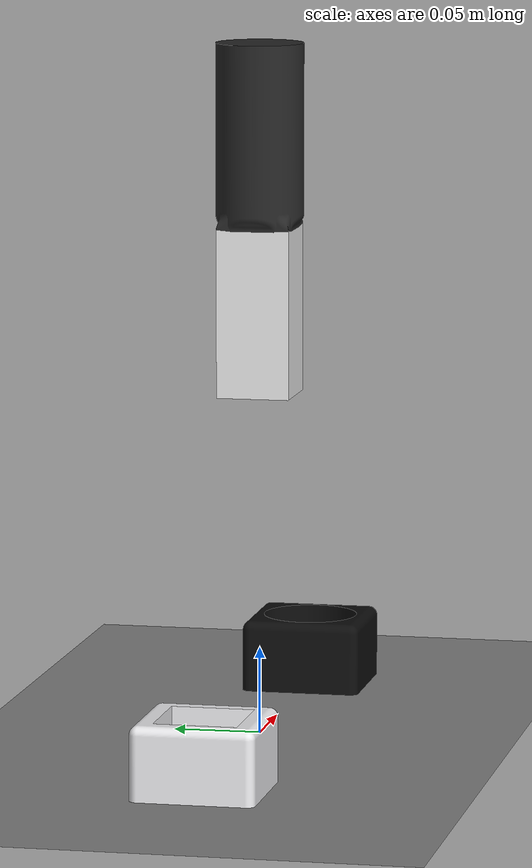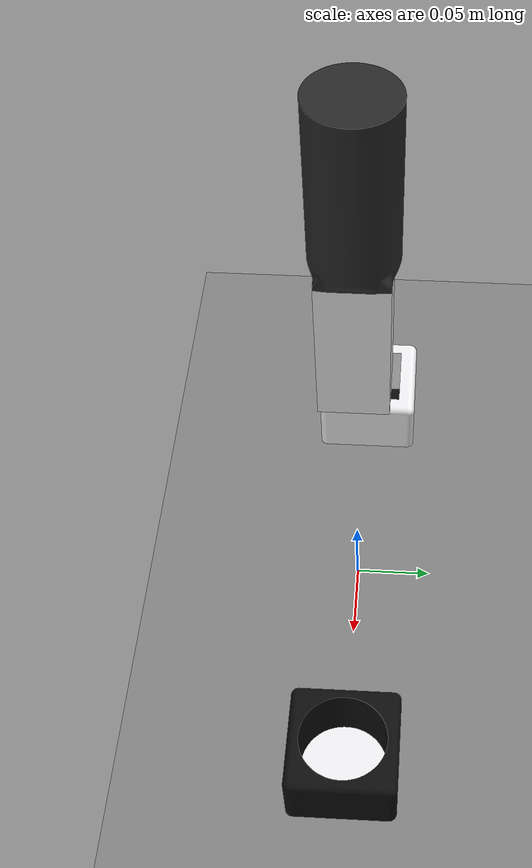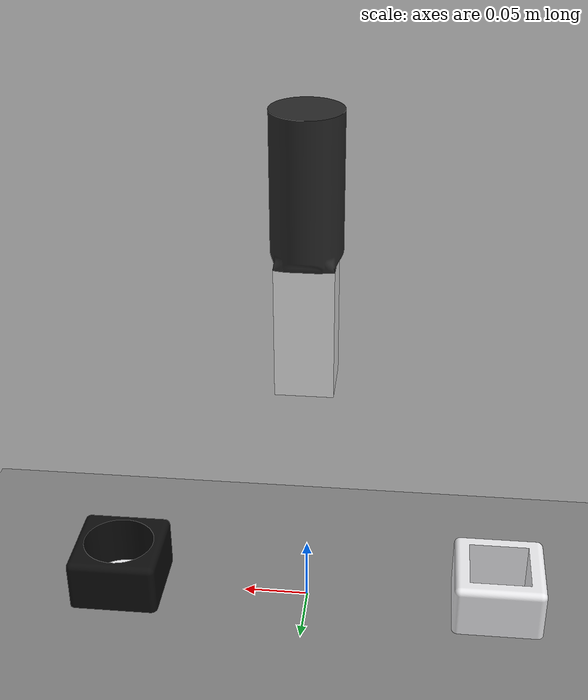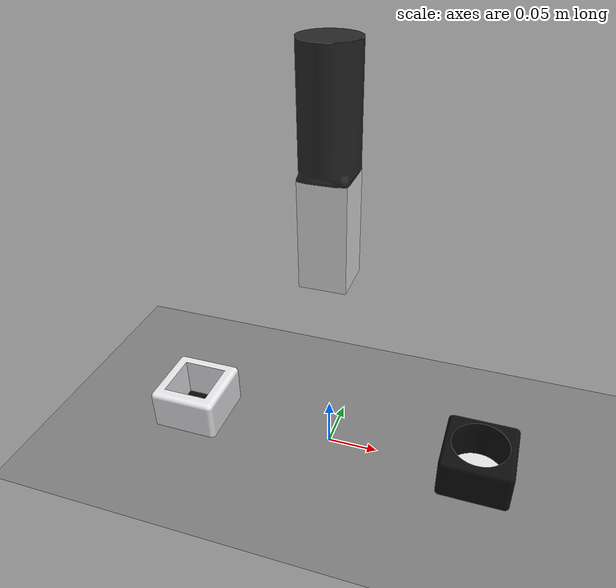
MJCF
<mujoco model="peg_hole_test"><include file="peg_hole_assets.xml"/>
  <option timestep="0.001" integrator="implicitfast"/>
  <worldbody><geom name="table" type="plane" size="1 1 0.1" friction="0.8 0.005 0.0005" solref="0.004 1" solimp="0.95 0.99 0.001" condim="4"/>
    <body name="hole_square" pos="-0.15 0 0.041"><inertial pos="0 0 -0.022" mass="0.05" diaginertia="2.848e-05 2.848e-05 4.083e-05"/><geom type="mesh" mesh="hole_square_vis" contype="0" conaffinity="0" rgba="0.92 0.92 0.93 1"/><geom type="mesh" mesh="hole_square_floor" mass="0" contype="0" conaffinity="0" rgba="0.04 0.04 0.04 1"/>
      <geom type="box" pos="0 0 -0.04250" size="0.03500 0.03500 0.00150" friction="0.8 0.005 0.0005" solref="0.004 1" solimp="0.95 0.99 0.001" condim="4" rgba="0.2 0.2 0.22 0"/>
      <geom type="box" pos="0.02917 0 -0.02050" size="0.00583 0.03500 0.02050" friction="0.8 0.005 0.0005" solref="0.004 1" solimp="0.95 0.99 0.001" condim="4" rgba="0.2 0.2 0.22 0"/>
      <geom type="box" pos="-0.02917 0 -0.02050" size="0.00583 0.03500 0.02050" friction="0.8 0.005 0.0005" solref="0.004 1" solimp="0.95 0.99 0.001" condim="4" rgba="0.2 0.2 0.22 0"/>
      <geom type="box" pos="0 0.02917 -0.02050" size="0.02335 0.00583 0.02050" friction="0.8 0.005 0.0005" solref="0.004 1" solimp="0.95 0.99 0.001" condim="4" rgba="0.2 0.2 0.22 0"/>
      <geom type="box" pos="0 -0.02917 -0.02050" size="0.02335 0.00583 0.02050" friction="0.8 0.005 0.0005" solref="0.004 1" solimp="0.95 0.99 0.001" condim="4" rgba="0.2 0.2 0.22 0"/>
    </body>
    <body name="hole_circle" pos="0.15 0 0.041"><inertial pos="0 0 -0.022" mass="0.05" diaginertia="2.848e-05 2.848e-05 4.083e-05"/><geom type="mesh" mesh="hole_circle_vis" contype="0" conaffinity="0" rgba="0.05 0.05 0.05 1"/><geom type="mesh" mesh="hole_circle_floor" mass="0" contype="0" conaffinity="0" rgba="0.92 0.92 0.93 1"/>
      <geom type="box" pos="0 0 -0.04250" size="0.03500 0.03500 0.00150" friction="0.8 0.005 0.0005" solref="0.004 1" solimp="0.95 0.99 0.001" condim="4" rgba="0.2 0.2 0.22 0"/>
      <geom type="mesh" mesh="cq0" friction="0.8 0.005 0.0005" solref="0.004 1" solimp="0.95 0.99 0.001" condim="4" rgba="0.2 0.2 0.22 0"/>
      <geom type="mesh" mesh="cq1" friction="0.8 0.005 0.0005" solref="0.004 1" solimp="0.95 0.99 0.001" condim="4" rgba="0.2 0.2 0.22 0"/>
      <geom type="mesh" mesh="cq2" friction="0.8 0.005 0.0005" solref="0.004 1" solimp="0.95 0.99 0.001" condim="4" rgba="0.2 0.2 0.22 0"/>
      <geom type="mesh" mesh="cq3" friction="0.8 0.005 0.0005" solref="0.004 1" solimp="0.95 0.99 0.001" condim="4" rgba="0.2 0.2 0.22 0"/>
      <geom type="mesh" mesh="cq4" friction="0.8 0.005 0.0005" solref="0.004 1" solimp="0.95 0.99 0.001" condim="4" rgba="0.2 0.2 0.22 0"/>
      <geom type="mesh" mesh="cq5" friction="0.8 0.005 0.0005" solref="0.004 1" solimp="0.95 0.99 0.001" condim="4" rgba="0.2 0.2 0.22 0"/>
      <geom type="mesh" mesh="cq6" friction="0.8 0.005 0.0005" solref="0.004 1" solimp="0.95 0.99 0.001" condim="4" rgba="0.2 0.2 0.22 0"/>
      <geom type="mesh" mesh="cq7" friction="0.8 0.005 0.0005" solref="0.004 1" solimp="0.95 0.99 0.001" condim="4" rgba="0.2 0.2 0.22 0"/>
      <geom type="mesh" mesh="cq8" friction="0.8 0.005 0.0005" solref="0.004 1" solimp="0.95 0.99 0.001" condim="4" rgba="0.2 0.2 0.22 0"/>
      <geom type="mesh" mesh="cq9" friction="0.8 0.005 0.0005" solref="0.004 1" solimp="0.95 0.99 0.001" condim="4" rgba="0.2 0.2 0.22 0"/>
      <geom type="mesh" mesh="cq10" friction="0.8 0.005 0.0005" solref="0.004 1" solimp="0.95 0.99 0.001" condim="4" rgba="0.2 0.2 0.22 0"/>
      <geom type="mesh" mesh="cq11" friction="0.8 0.005 0.0005" solref="0.004 1" solimp="0.95 0.99 0.001" condim="4" rgba="0.2 0.2 0.22 0"/>
      <geom type="mesh" mesh="cq12" friction="0.8 0.005 0.0005" solref="0.004 1" solimp="0.95 0.99 0.001" condim="4" rgba="0.2 0.2 0.22 0"/>
      <geom type="mesh" mesh="cq13" friction="0.8 0.005 0.0005" solref="0.004 1" solimp="0.95 0.99 0.001" condim="4" rgba="0.2 0.2 0.22 0"/>
      <geom type="mesh" mesh="cq14" friction="0.8 0.005 0.0005" solref="0.004 1" solimp="0.95 0.99 0.001" condim="4" rgba="0.2 0.2 0.22 0"/>
      <geom type="mesh" mesh="cq15" friction="0.8 0.005 0.0005" solref="0.004 1" solimp="0.95 0.99 0.001" condim="4" rgba="0.2 0.2 0.22 0"/>
      <geom type="mesh" mesh="cq16" friction="0.8 0.005 0.0005" solref="0.004 1" solimp="0.95 0.99 0.001" condim="4" rgba="0.2 0.2 0.22 0"/>
      <geom type="mesh" mesh="cq17" friction="0.8 0.005 0.0005" solref="0.004 1" solimp="0.95 0.99 0.001" condim="4" rgba="0.2 0.2 0.22 0"/>
      <geom type="mesh" mesh="cq18" friction="0.8 0.005 0.0005" solref="0.004 1" solimp="0.95 0.99 0.001" condim="4" rgba="0.2 0.2 0.22 0"/>
      <geom type="mesh" mesh="cq19" friction="0.8 0.005 0.0005" solref="0.004 1" solimp="0.95 0.99 0.001" condim="4" rgba="0.2 0.2 0.22 0"/>
      <geom type="mesh" mesh="cq20" friction="0.8 0.005 0.0005" solref="0.004 1" solimp="0.95 0.99 0.001" condim="4" rgba="0.2 0.2 0.22 0"/>
      <geom type="mesh" mesh="cq21" friction="0.8 0.005 0.0005" solref="0.004 1" solimp="0.95 0.99 0.001" condim="4" rgba="0.2 0.2 0.22 0"/>
      <geom type="mesh" mesh="cq22" friction="0.8 0.005 0.0005" solref="0.004 1" solimp="0.95 0.99 0.001" condim="4" rgba="0.2 0.2 0.22 0"/>
      <geom type="mesh" mesh="cq23" friction="0.8 0.005 0.0005" solref="0.004 1" solimp="0.95 0.99 0.001" condim="4" rgba="0.2 0.2 0.22 0"/>
      <geom type="mesh" mesh="cq24" friction="0.8 0.005 0.0005" solref="0.004 1" solimp="0.95 0.99 0.001" condim="4" rgba="0.2 0.2 0.22 0"/>
      <geom type="mesh" mesh="cq25" friction="0.8 0.005 0.0005" solref="0.004 1" solimp="0.95 0.99 0.001" condim="4" rgba="0.2 0.2 0.22 0"/>
      <geom type="mesh" mesh="cq26" friction="0.8 0.005 0.0005" solref="0.004 1" solimp="0.95 0.99 0.001" condim="4" rgba="0.2 0.2 0.22 0"/>
      <geom type="mesh" mesh="cq27" friction="0.8 0.005 0.0005" solref="0.004 1" solimp="0.95 0.99 0.001" condim="4" rgba="0.2 0.2 0.22 0"/>
      <geom type="mesh" mesh="cq28" friction="0.8 0.005 0.0005" solref="0.004 1" solimp="0.95 0.99 0.001" condim="4" rgba="0.2 0.2 0.22 0"/>
      <geom type="mesh" mesh="cq29" friction="0.8 0.005 0.0005" solref="0.004 1" solimp="0.95 0.99 0.001" condim="4" rgba="0.2 0.2 0.22 0"/>
      <geom type="mesh" mesh="cq30" friction="0.8 0.005 0.0005" solref="0.004 1" solimp="0.95 0.99 0.001" condim="4" rgba="0.2 0.2 0.22 0"/>
      <geom type="mesh" mesh="cq31" friction="0.8 0.005 0.0005" solref="0.004 1" solimp="0.95 0.99 0.001" condim="4" rgba="0.2 0.2 0.22 0"/>
      <geom type="mesh" mesh="cq32" friction="0.8 0.005 0.0005" solref="0.004 1" solimp="0.95 0.99 0.001" condim="4" rgba="0.2 0.2 0.22 0"/>
      <geom type="mesh" mesh="cq33" friction="0.8 0.005 0.0005" solref="0.004 1" solimp="0.95 0.99 0.001" condim="4" rgba="0.2 0.2 0.22 0"/>
      <geom type="mesh" mesh="cq34" friction="0.8 0.005 0.0005" solref="0.004 1" solimp="0.95 0.99 0.001" condim="4" rgba="0.2 0.2 0.22 0"/>
      <geom type="mesh" mesh="cq35" friction="0.8 0.005 0.0005" solref="0.004 1" solimp="0.95 0.99 0.001" condim="4" rgba="0.2 0.2 0.22 0"/>
      <geom type="mesh" mesh="cq36" friction="0.8 0.005 0.0005" solref="0.004 1" solimp="0.95 0.99 0.001" condim="4" rgba="0.2 0.2 0.22 0"/>
      <geom type="mesh" mesh="cq37" friction="0.8 0.005 0.0005" solref="0.004 1" solimp="0.95 0.99 0.001" condim="4" rgba="0.2 0.2 0.22 0"/>
      <geom type="mesh" mesh="cq38" friction="0.8 0.005 0.0005" solref="0.004 1" solimp="0.95 0.99 0.001" condim="4" rgba="0.2 0.2 0.22 0"/>
      <geom type="mesh" mesh="cq39" friction="0.8 0.005 0.0005" solref="0.004 1" solimp="0.95 0.99 0.001" condim="4" rgba="0.2 0.2 0.22 0"/>
      <geom type="mesh" mesh="cq40" friction="0.8 0.005 0.0005" solref="0.004 1" solimp="0.95 0.99 0.001" condim="4" rgba="0.2 0.2 0.22 0"/>
      <geom type="mesh" mesh="cq41" friction="0.8 0.005 0.0005" solref="0.004 1" solimp="0.95 0.99 0.001" condim="4" rgba="0.2 0.2 0.22 0"/>
      <geom type="mesh" mesh="cq42" friction="0.8 0.005 0.0005" solref="0.004 1" solimp="0.95 0.99 0.001" condim="4" rgba="0.2 0.2 0.22 0"/>
      <geom type="mesh" mesh="cq43" friction="0.8 0.005 0.0005" solref="0.004 1" solimp="0.95 0.99 0.001" condim="4" rgba="0.2 0.2 0.22 0"/>
      <geom type="mesh" mesh="cq44" friction="0.8 0.005 0.0005" solref="0.004 1" solimp="0.95 0.99 0.001" condim="4" rgba="0.2 0.2 0.22 0"/>
      <geom type="mesh" mesh="cq45" friction="0.8 0.005 0.0005" solref="0.004 1" solimp="0.95 0.99 0.001" condim="4" rgba="0.2 0.2 0.22 0"/>
      <geom type="mesh" mesh="cq46" friction="0.8 0.005 0.0005" solref="0.004 1" solimp="0.95 0.99 0.001" condim="4" rgba="0.2 0.2 0.22 0"/>
      <geom type="mesh" mesh="cq47" friction="0.8 0.005 0.0005" solref="0.004 1" solimp="0.95 0.99 0.001" condim="4" rgba="0.2 0.2 0.22 0"/>
    </body>
    <body name="peg" pos="0 0 0.3">
      <freejoint name="peg_free"/>
      <inertial pos="0 0 0" mass="0.1" diaginertia="2.195e-04 2.195e-04 5.281e-05"/>
      <geom type="mesh" mesh="peg_sq" contype="0" conaffinity="0" rgba="0.9 0.9 0.9 1"/>
      <geom type="mesh" mesh="peg_circ" contype="0" conaffinity="0" rgba="0.15 0.15 0.15 1"/>
      <!-- collision = primitives (mesh-mesh contacts were unstable at the rim); 8 mm square->round loft has no collision geom -->
      <geom name="peg_sq_col" type="box" pos="0 0 -0.05575" size="0.02075 0.02075 0.0475" friction="0.8 0.005 0.0005" solref="0.004 1" solimp="0.95 0.99 0.001" condim="4" rgba="0 0 0 0"/>
      <geom name="peg_circ_col" type="cylinder" pos="0 0 0.04834" size="0.025 0.04841" friction="0.8 0.005 0.0005" solref="0.004 1" solimp="0.95 0.99 0.001" condim="4" rgba="0 0 0 0"/>
    </body>
  </worldbody></mujoco>

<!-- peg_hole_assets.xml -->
<mujoco model="peg_hole_assets">
  <compiler angle="radian" meshdir="meshes"/>
  <asset>
    <mesh name="peg_sq" file="peg_sq.stl"/>
    <mesh name="peg_circ" file="peg_circ.stl"/>
    <mesh name="hole_circle_vis" file="hole_circle_vis.stl"/>
    <mesh name="hole_square_vis" file="hole_square_vis.stl"/>
    <mesh name="hole_circle_floor" file="hole_circle_floor.stl"/>
    <mesh name="hole_square_floor" file="hole_square_floor.stl"/>
    <mesh name="cq0" vertex="0.027740 0.000000 0.000000 0.027503 0.003621 0.000000 0.035000 0.004608 0.000000 0.035000 0.000000 0.000000 0.027740 0.000000 -0.041000 0.027503 0.003621 -0.041000 0.035000 0.004608 -0.041000 0.035000 0.000000 -0.041000"/>
    <mesh name="cq1" vertex="0.027503 0.003621 0.000000 0.026795 0.007180 0.000000 0.035000 0.009378 0.000000 0.035000 0.004608 0.000000 0.027503 0.003621 -0.041000 0.026795 0.007180 -0.041000 0.035000 0.009378 -0.041000 0.035000 0.004608 -0.041000"/>
    <mesh name="cq2" vertex="0.026795 0.007180 0.000000 0.025628 0.010616 0.000000 0.035000 0.014497 0.000000 0.035000 0.009378 0.000000 0.026795 0.007180 -0.041000 0.025628 0.010616 -0.041000 0.035000 0.014497 -0.041000 0.035000 0.009378 -0.041000"/>
    <mesh name="cq3" vertex="0.025628 0.010616 0.000000 0.024024 0.013870 0.000000 0.035000 0.020207 0.000000 0.035000 0.014497 0.000000 0.025628 0.010616 -0.041000 0.024024 0.013870 -0.041000 0.035000 0.020207 -0.041000 0.035000 0.014497 -0.041000"/>
    <mesh name="cq4" vertex="0.024024 0.013870 0.000000 0.022008 0.016887 0.000000 0.035000 0.026856 0.000000 0.035000 0.020207 0.000000 0.024024 0.013870 -0.041000 0.022008 0.016887 -0.041000 0.035000 0.026856 -0.041000 0.035000 0.020207 -0.041000"/>
    <mesh name="cq5" vertex="0.022008 0.016887 0.000000 0.019615 0.019615 0.000000 0.035000 0.035000 0.000000 0.035000 0.026856 0.000000 0.022008 0.016887 -0.041000 0.019615 0.019615 -0.041000 0.035000 0.035000 -0.041000 0.035000 0.026856 -0.041000"/>
    <mesh name="cq6" vertex="0.019615 0.019615 0.000000 0.016887 0.022008 0.000000 0.026856 0.035000 0.000000 0.035000 0.035000 0.000000 0.019615 0.019615 -0.041000 0.016887 0.022008 -0.041000 0.026856 0.035000 -0.041000 0.035000 0.035000 -0.041000"/>
    <mesh name="cq7" vertex="0.016887 0.022008 0.000000 0.013870 0.024024 0.000000 0.020207 0.035000 0.000000 0.026856 0.035000 0.000000 0.016887 0.022008 -0.041000 0.013870 0.024024 -0.041000 0.020207 0.035000 -0.041000 0.026856 0.035000 -0.041000"/>
    <mesh name="cq8" vertex="0.013870 0.024024 0.000000 0.010616 0.025628 0.000000 0.014497 0.035000 0.000000 0.020207 0.035000 0.000000 0.013870 0.024024 -0.041000 0.010616 0.025628 -0.041000 0.014497 0.035000 -0.041000 0.020207 0.035000 -0.041000"/>
    <mesh name="cq9" vertex="0.010616 0.025628 0.000000 0.007180 0.026795 0.000000 0.009378 0.035000 0.000000 0.014497 0.035000 0.000000 0.010616 0.025628 -0.041000 0.007180 0.026795 -0.041000 0.009378 0.035000 -0.041000 0.014497 0.035000 -0.041000"/>
    <mesh name="cq10" vertex="0.007180 0.026795 0.000000 0.003621 0.027503 0.000000 0.004608 0.035000 0.000000 0.009378 0.035000 0.000000 0.007180 0.026795 -0.041000 0.003621 0.027503 -0.041000 0.004608 0.035000 -0.041000 0.009378 0.035000 -0.041000"/>
    <mesh name="cq11" vertex="0.003621 0.027503 0.000000 0.000000 0.027740 0.000000 0.000000 0.035000 0.000000 0.004608 0.035000 0.000000 0.003621 0.027503 -0.041000 0.000000 0.027740 -0.041000 0.000000 0.035000 -0.041000 0.004608 0.035000 -0.041000"/>
    <mesh name="cq12" vertex="0.000000 0.027740 0.000000 -0.003621 0.027503 0.000000 -0.004608 0.035000 0.000000 0.000000 0.035000 0.000000 0.000000 0.027740 -0.041000 -0.003621 0.027503 -0.041000 -0.004608 0.035000 -0.041000 0.000000 0.035000 -0.041000"/>
    <mesh name="cq13" vertex="-0.003621 0.027503 0.000000 -0.007180 0.026795 0.000000 -0.009378 0.035000 0.000000 -0.004608 0.035000 0.000000 -0.003621 0.027503 -0.041000 -0.007180 0.026795 -0.041000 -0.009378 0.035000 -0.041000 -0.004608 0.035000 -0.041000"/>
    <mesh name="cq14" vertex="-0.007180 0.026795 0.000000 -0.010616 0.025628 0.000000 -0.014497 0.035000 0.000000 -0.009378 0.035000 0.000000 -0.007180 0.026795 -0.041000 -0.010616 0.025628 -0.041000 -0.014497 0.035000 -0.041000 -0.009378 0.035000 -0.041000"/>
    <mesh name="cq15" vertex="-0.010616 0.025628 0.000000 -0.013870 0.024024 0.000000 -0.020207 0.035000 0.000000 -0.014497 0.035000 0.000000 -0.010616 0.025628 -0.041000 -0.013870 0.024024 -0.041000 -0.020207 0.035000 -0.041000 -0.014497 0.035000 -0.041000"/>
    <mesh name="cq16" vertex="-0.013870 0.024024 0.000000 -0.016887 0.022008 0.000000 -0.026856 0.035000 0.000000 -0.020207 0.035000 0.000000 -0.013870 0.024024 -0.041000 -0.016887 0.022008 -0.041000 -0.026856 0.035000 -0.041000 -0.020207 0.035000 -0.041000"/>
    <mesh name="cq17" vertex="-0.016887 0.022008 0.000000 -0.019615 0.019615 0.000000 -0.035000 0.035000 0.000000 -0.026856 0.035000 0.000000 -0.016887 0.022008 -0.041000 -0.019615 0.019615 -0.041000 -0.035000 0.035000 -0.041000 -0.026856 0.035000 -0.041000"/>
    <mesh name="cq18" vertex="-0.019615 0.019615 0.000000 -0.022008 0.016887 0.000000 -0.035000 0.026856 0.000000 -0.035000 0.035000 0.000000 -0.019615 0.019615 -0.041000 -0.022008 0.016887 -0.041000 -0.035000 0.026856 -0.041000 -0.035000 0.035000 -0.041000"/>
    <mesh name="cq19" vertex="-0.022008 0.016887 0.000000 -0.024024 0.013870 0.000000 -0.035000 0.020207 0.000000 -0.035000 0.026856 0.000000 -0.022008 0.016887 -0.041000 -0.024024 0.013870 -0.041000 -0.035000 0.020207 -0.041000 -0.035000 0.026856 -0.041000"/>
    <mesh name="cq20" vertex="-0.024024 0.013870 0.000000 -0.025628 0.010616 0.000000 -0.035000 0.014497 0.000000 -0.035000 0.020207 0.000000 -0.024024 0.013870 -0.041000 -0.025628 0.010616 -0.041000 -0.035000 0.014497 -0.041000 -0.035000 0.020207 -0.041000"/>
    <mesh name="cq21" vertex="-0.025628 0.010616 0.000000 -0.026795 0.007180 0.000000 -0.035000 0.009378 0.000000 -0.035000 0.014497 0.000000 -0.025628 0.010616 -0.041000 -0.026795 0.007180 -0.041000 -0.035000 0.009378 -0.041000 -0.035000 0.014497 -0.041000"/>
    <mesh name="cq22" vertex="-0.026795 0.007180 0.000000 -0.027503 0.003621 0.000000 -0.035000 0.004608 0.000000 -0.035000 0.009378 0.000000 -0.026795 0.007180 -0.041000 -0.027503 0.003621 -0.041000 -0.035000 0.004608 -0.041000 -0.035000 0.009378 -0.041000"/>
    <mesh name="cq23" vertex="-0.027503 0.003621 0.000000 -0.027740 0.000000 0.000000 -0.035000 0.000000 0.000000 -0.035000 0.004608 0.000000 -0.027503 0.003621 -0.041000 -0.027740 0.000000 -0.041000 -0.035000 0.000000 -0.041000 -0.035000 0.004608 -0.041000"/>
    <mesh name="cq24" vertex="-0.027740 0.000000 0.000000 -0.027503 -0.003621 0.000000 -0.035000 -0.004608 0.000000 -0.035000 0.000000 0.000000 -0.027740 0.000000 -0.041000 -0.027503 -0.003621 -0.041000 -0.035000 -0.004608 -0.041000 -0.035000 0.000000 -0.041000"/>
    <mesh name="cq25" vertex="-0.027503 -0.003621 0.000000 -0.026795 -0.007180 0.000000 -0.035000 -0.009378 0.000000 -0.035000 -0.004608 0.000000 -0.027503 -0.003621 -0.041000 -0.026795 -0.007180 -0.041000 -0.035000 -0.009378 -0.041000 -0.035000 -0.004608 -0.041000"/>
    <mesh name="cq26" vertex="-0.026795 -0.007180 0.000000 -0.025628 -0.010616 0.000000 -0.035000 -0.014497 0.000000 -0.035000 -0.009378 0.000000 -0.026795 -0.007180 -0.041000 -0.025628 -0.010616 -0.041000 -0.035000 -0.014497 -0.041000 -0.035000 -0.009378 -0.041000"/>
    <mesh name="cq27" vertex="-0.025628 -0.010616 0.000000 -0.024024 -0.013870 0.000000 -0.035000 -0.020207 0.000000 -0.035000 -0.014497 0.000000 -0.025628 -0.010616 -0.041000 -0.024024 -0.013870 -0.041000 -0.035000 -0.020207 -0.041000 -0.035000 -0.014497 -0.041000"/>
    <mesh name="cq28" vertex="-0.024024 -0.013870 0.000000 -0.022008 -0.016887 0.000000 -0.035000 -0.026856 0.000000 -0.035000 -0.020207 0.000000 -0.024024 -0.013870 -0.041000 -0.022008 -0.016887 -0.041000 -0.035000 -0.026856 -0.041000 -0.035000 -0.020207 -0.041000"/>
    <mesh name="cq29" vertex="-0.022008 -0.016887 0.000000 -0.019615 -0.019615 0.000000 -0.035000 -0.035000 0.000000 -0.035000 -0.026856 0.000000 -0.022008 -0.016887 -0.041000 -0.019615 -0.019615 -0.041000 -0.035000 -0.035000 -0.041000 -0.035000 -0.026856 -0.041000"/>
    <mesh name="cq30" vertex="-0.019615 -0.019615 0.000000 -0.016887 -0.022008 0.000000 -0.026856 -0.035000 0.000000 -0.035000 -0.035000 0.000000 -0.019615 -0.019615 -0.041000 -0.016887 -0.022008 -0.041000 -0.026856 -0.035000 -0.041000 -0.035000 -0.035000 -0.041000"/>
    <mesh name="cq31" vertex="-0.016887 -0.022008 0.000000 -0.013870 -0.024024 0.000000 -0.020207 -0.035000 0.000000 -0.026856 -0.035000 0.000000 -0.016887 -0.022008 -0.041000 -0.013870 -0.024024 -0.041000 -0.020207 -0.035000 -0.041000 -0.026856 -0.035000 -0.041000"/>
    <mesh name="cq32" vertex="-0.013870 -0.024024 0.000000 -0.010616 -0.025628 0.000000 -0.014497 -0.035000 0.000000 -0.020207 -0.035000 0.000000 -0.013870 -0.024024 -0.041000 -0.010616 -0.025628 -0.041000 -0.014497 -0.035000 -0.041000 -0.020207 -0.035000 -0.041000"/>
    <mesh name="cq33" vertex="-0.010616 -0.025628 0.000000 -0.007180 -0.026795 0.000000 -0.009378 -0.035000 0.000000 -0.014497 -0.035000 0.000000 -0.010616 -0.025628 -0.041000 -0.007180 -0.026795 -0.041000 -0.009378 -0.035000 -0.041000 -0.014497 -0.035000 -0.041000"/>
    <mesh name="cq34" vertex="-0.007180 -0.026795 0.000000 -0.003621 -0.027503 0.000000 -0.004608 -0.035000 0.000000 -0.009378 -0.035000 0.000000 -0.007180 -0.026795 -0.041000 -0.003621 -0.027503 -0.041000 -0.004608 -0.035000 -0.041000 -0.009378 -0.035000 -0.041000"/>
    <mesh name="cq35" vertex="-0.003621 -0.027503 0.000000 -0.000000 -0.027740 0.000000 -0.000000 -0.035000 0.000000 -0.004608 -0.035000 0.000000 -0.003621 -0.027503 -0.041000 -0.000000 -0.027740 -0.041000 -0.000000 -0.035000 -0.041000 -0.004608 -0.035000 -0.041000"/>
    <mesh name="cq36" vertex="-0.000000 -0.027740 0.000000 0.003621 -0.027503 0.000000 0.004608 -0.035000 0.000000 -0.000000 -0.035000 0.000000 -0.000000 -0.027740 -0.041000 0.003621 -0.027503 -0.041000 0.004608 -0.035000 -0.041000 -0.000000 -0.035000 -0.041000"/>
    <mesh name="cq37" vertex="0.003621 -0.027503 0.000000 0.007180 -0.026795 0.000000 0.009378 -0.035000 0.000000 0.004608 -0.035000 0.000000 0.003621 -0.027503 -0.041000 0.007180 -0.026795 -0.041000 0.009378 -0.035000 -0.041000 0.004608 -0.035000 -0.041000"/>
    <mesh name="cq38" vertex="0.007180 -0.026795 0.000000 0.010616 -0.025628 0.000000 0.014497 -0.035000 0.000000 0.009378 -0.035000 0.000000 0.007180 -0.026795 -0.041000 0.010616 -0.025628 -0.041000 0.014497 -0.035000 -0.041000 0.009378 -0.035000 -0.041000"/>
    <mesh name="cq39" vertex="0.010616 -0.025628 0.000000 0.013870 -0.024024 0.000000 0.020207 -0.035000 0.000000 0.014497 -0.035000 0.000000 0.010616 -0.025628 -0.041000 0.013870 -0.024024 -0.041000 0.020207 -0.035000 -0.041000 0.014497 -0.035000 -0.041000"/>
    <mesh name="cq40" vertex="0.013870 -0.024024 0.000000 0.016887 -0.022008 0.000000 0.026856 -0.035000 0.000000 0.020207 -0.035000 0.000000 0.013870 -0.024024 -0.041000 0.016887 -0.022008 -0.041000 0.026856 -0.035000 -0.041000 0.020207 -0.035000 -0.041000"/>
    <mesh name="cq41" vertex="0.016887 -0.022008 0.000000 0.019615 -0.019615 0.000000 0.035000 -0.035000 0.000000 0.026856 -0.035000 0.000000 0.016887 -0.022008 -0.041000 0.019615 -0.019615 -0.041000 0.035000 -0.035000 -0.041000 0.026856 -0.035000 -0.041000"/>
    <mesh name="cq42" vertex="0.019615 -0.019615 0.000000 0.022008 -0.016887 0.000000 0.035000 -0.026856 0.000000 0.035000 -0.035000 0.000000 0.019615 -0.019615 -0.041000 0.022008 -0.016887 -0.041000 0.035000 -0.026856 -0.041000 0.035000 -0.035000 -0.041000"/>
    <mesh name="cq43" vertex="0.022008 -0.016887 0.000000 0.024024 -0.013870 0.000000 0.035000 -0.020207 0.000000 0.035000 -0.026856 0.000000 0.022008 -0.016887 -0.041000 0.024024 -0.013870 -0.041000 0.035000 -0.020207 -0.041000 0.035000 -0.026856 -0.041000"/>
    <mesh name="cq44" vertex="0.024024 -0.013870 0.000000 0.025628 -0.010616 0.000000 0.035000 -0.014497 0.000000 0.035000 -0.020207 0.000000 0.024024 -0.013870 -0.041000 0.025628 -0.010616 -0.041000 0.035000 -0.014497 -0.041000 0.035000 -0.020207 -0.041000"/>
    <mesh name="cq45" vertex="0.025628 -0.010616 0.000000 0.026795 -0.007180 0.000000 0.035000 -0.009378 0.000000 0.035000 -0.014497 0.000000 0.025628 -0.010616 -0.041000 0.026795 -0.007180 -0.041000 0.035000 -0.009378 -0.041000 0.035000 -0.014497 -0.041000"/>
    <mesh name="cq46" vertex="0.026795 -0.007180 0.000000 0.027503 -0.003621 0.000000 0.035000 -0.004608 0.000000 0.035000 -0.009378 0.000000 0.026795 -0.007180 -0.041000 0.027503 -0.003621 -0.041000 0.035000 -0.004608 -0.041000 0.035000 -0.009378 -0.041000"/>
    <mesh name="cq47" vertex="0.027503 -0.003621 0.000000 0.027740 -0.000000 0.000000 0.035000 -0.000000 0.000000 0.035000 -0.004608 0.000000 0.027503 -0.003621 -0.041000 0.027740 -0.000000 -0.041000 0.035000 -0.000000 -0.041000 0.035000 -0.004608 -0.041000"/>
  </asset>
</mujoco>
